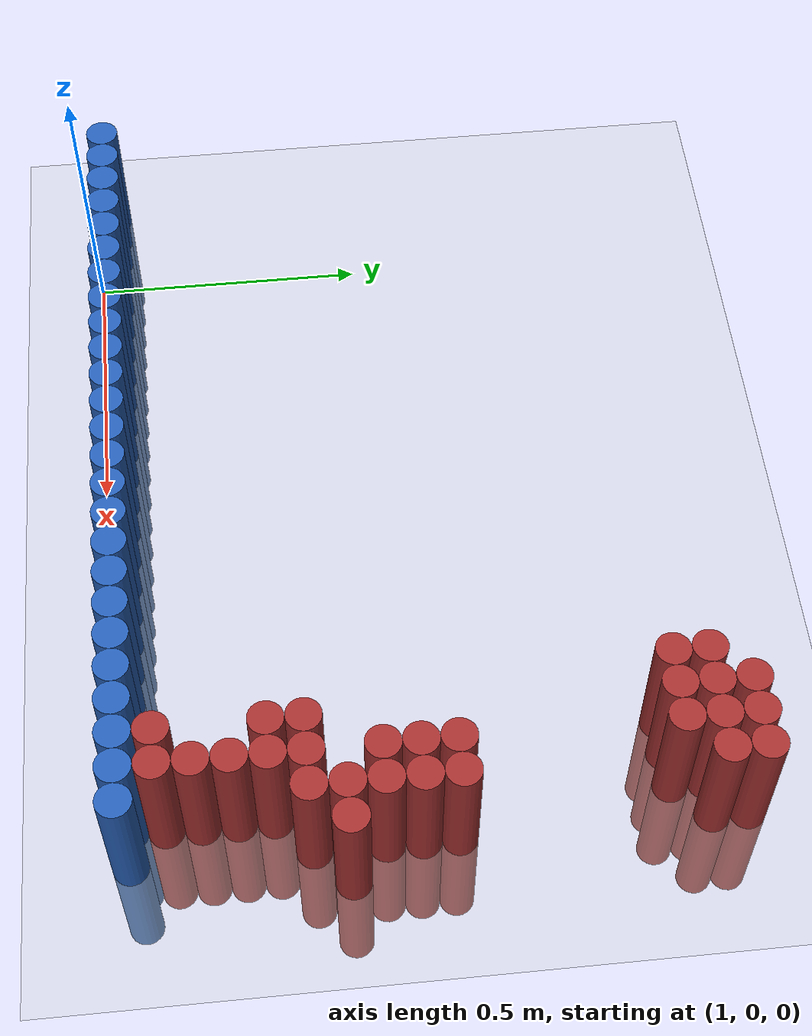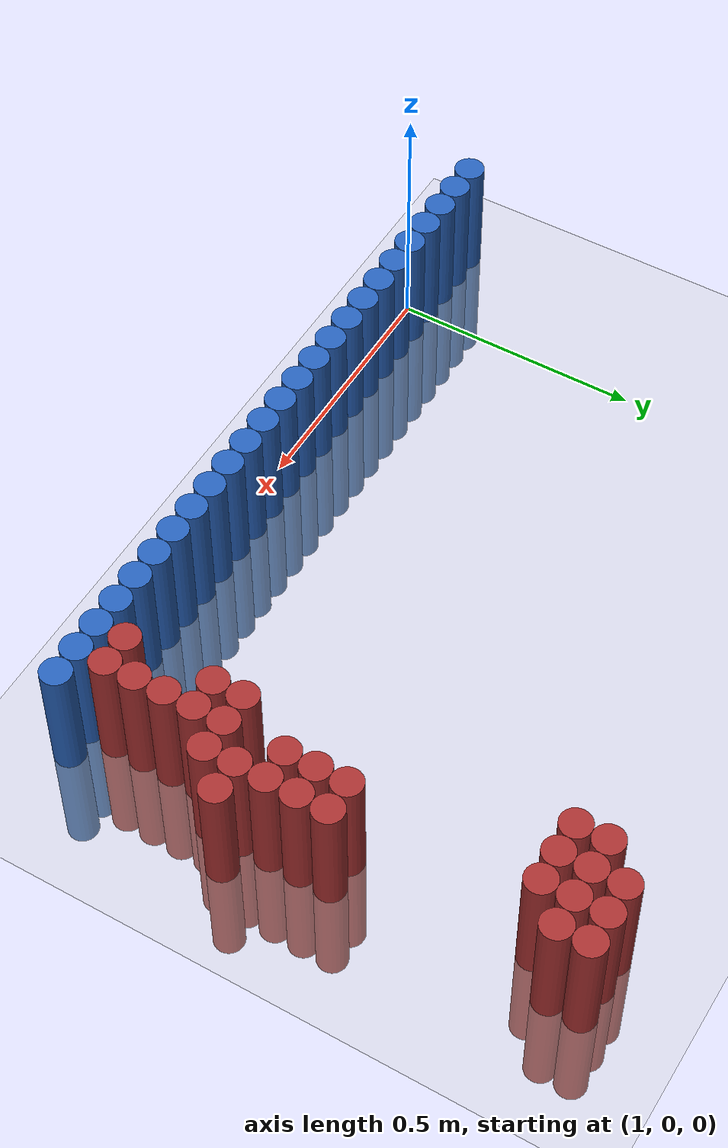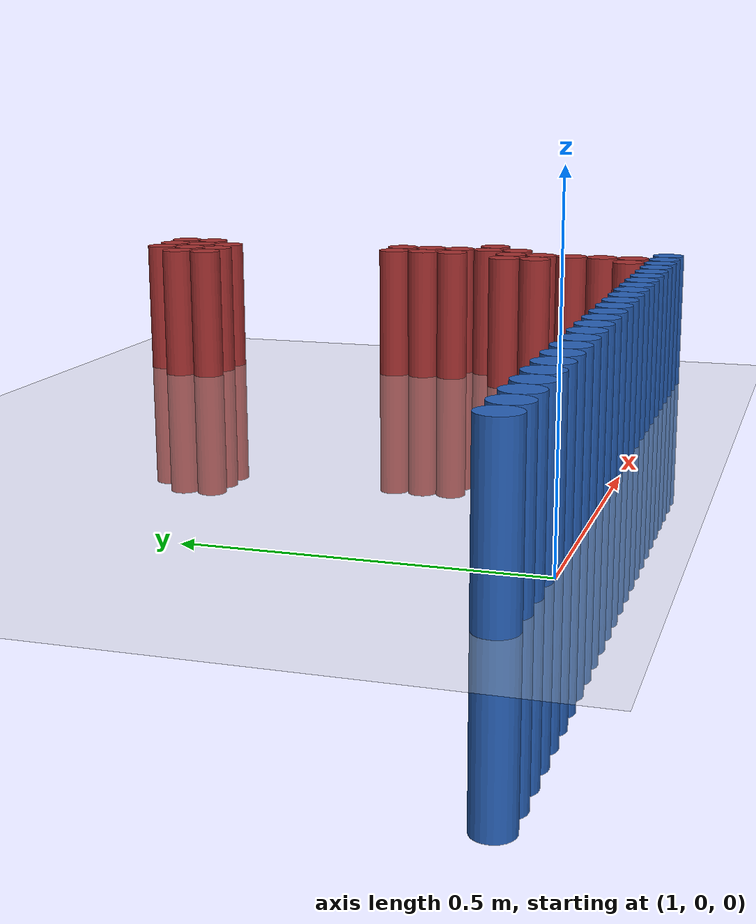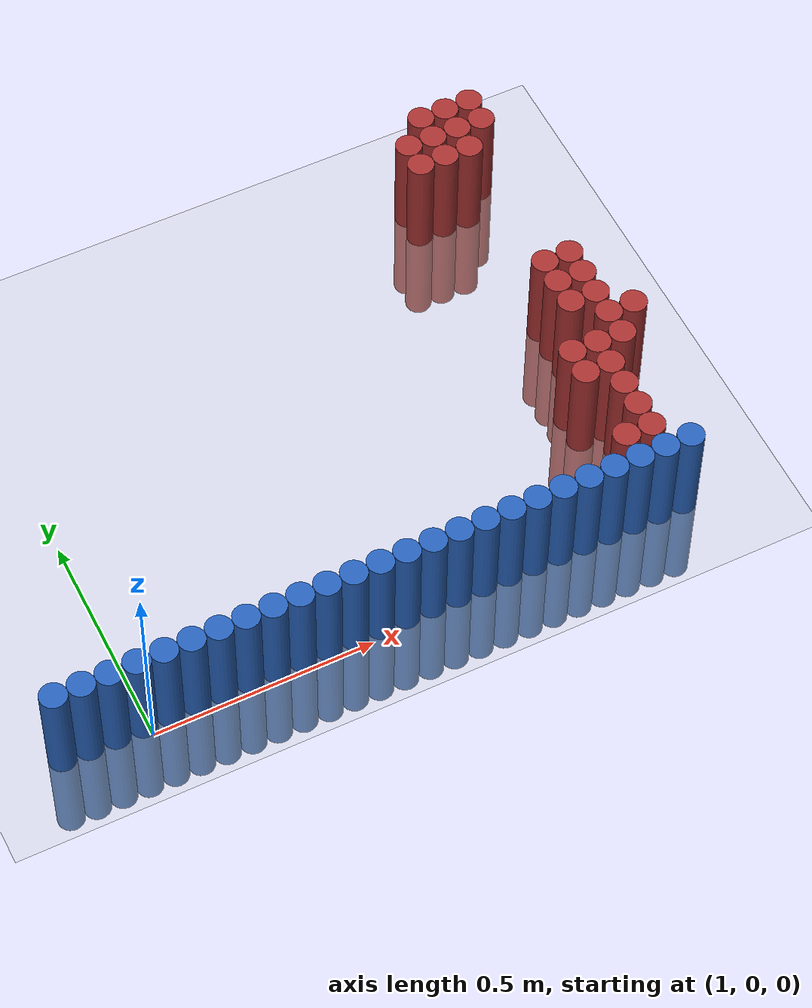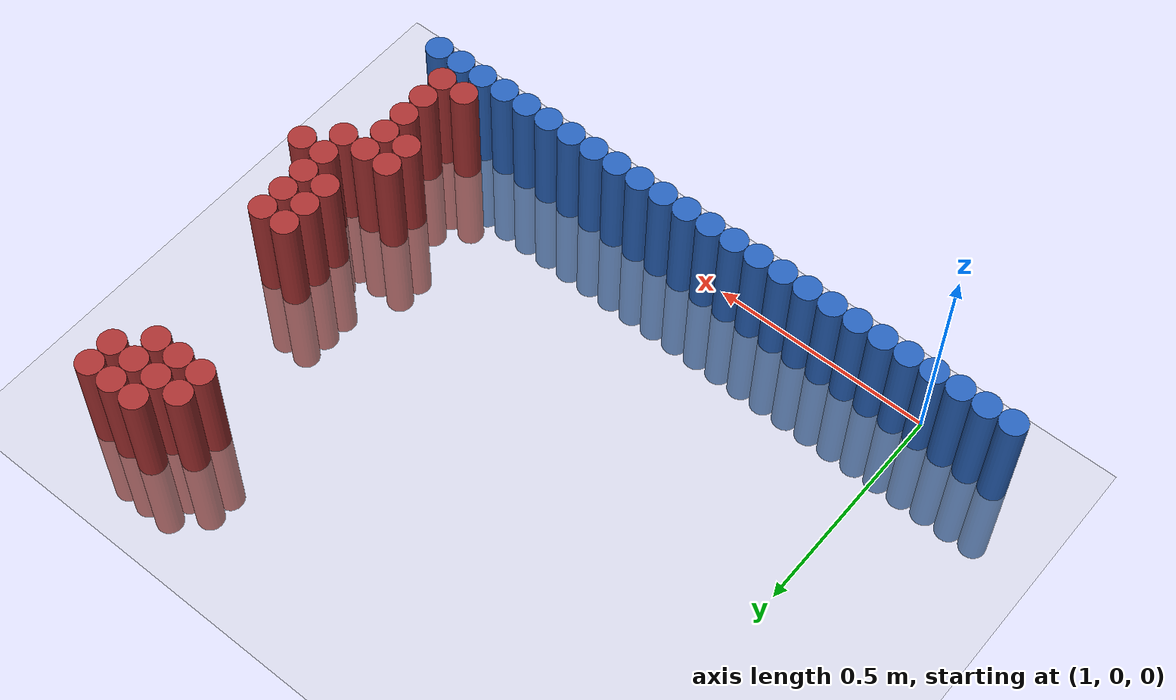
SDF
<sdf version="1.6">
 <world name="default">
  <model name="ground_plane">
   <static>1</static>
   <link name="link">
    <collision name="collision">
     <geometry><plane><normal>0 0 1</normal><size>100 100</size></plane></geometry>
     <surface><friction><ode><mu>100</mu><mu2>50</mu2></ode></friction></surface>
    </collision>
    <visual name="visual">
     <cast_shadows>0</cast_shadows>
     <geometry><plane><normal>0 0 1</normal><size>100 100</size></plane></geometry>
     <material>
      <script><uri>file://media/materials/scripts/gazebo.material</uri><name>Gazebo/Grey</name></script>
     </material>
    </visual>
   </link>
  </model>
  <model name="unit_cylinder_53">
   <static>1</static>
   <pose>0.810000 0.030000 0.000000 0.000000 0.000000 0.000000</pose>
   <link name="link">
    <inertial>
     <mass>1</mass>
     <inertia><ixx>0.145833</ixx><ixy>0</ixy><ixz>0</ixz><iyy>0.145833</iyy><iyz>0</iyz><izz>0.125</izz></inertia>
    </inertial>
    <collision name="collision">
     <geometry><cylinder><radius>0.030000</radius><length>0.5</length></cylinder></geometry>
    </collision>
    <visual name="visual">
     <geometry><cylinder><radius>0.030000</radius><length>0.5</length></cylinder></geometry>
     <material>
      <ambient>0.152000 0.379000 0.720000 1</ambient>
      <diffuse>0.152000 0.379000 0.720000 1</diffuse>
     </material>
     <material>
      <script><name>Gazebo/Grey</name><uri>file://media/materials/scripts/gazebo.material</uri></script>
     </material>
    </visual>
   </link>
  </model>
  <model name="unit_cylinder_55">
   <static>1</static>
   <pose>0.870000 0.030000 0.000000 0.000000 0.000000 0.000000</pose>
   <link name="link">
    <inertial>
     <mass>1</mass>
     <inertia><ixx>0.145833</ixx><ixy>0</ixy><ixz>0</ixz><iyy>0.145833</iyy><iyz>0</iyz><izz>0.125</izz></inertia>
    </inertial>
    <collision name="collision">
     <geometry><cylinder><radius>0.030000</radius><length>0.5</length></cylinder></geometry>
    </collision>
    <visual name="visual">
     <geometry><cylinder><radius>0.030000</radius><length>0.5</length></cylinder></geometry>
     <material>
      <ambient>0.152000 0.379000 0.720000 1</ambient>
      <diffuse>0.152000 0.379000 0.720000 1</diffuse>
     </material>
     <material>
      <script><name>Gazebo/Grey</name><uri>file://media/materials/scripts/gazebo.material</uri></script>
     </material>
    </visual>
   </link>
  </model>
  <model name="unit_cylinder_57">
   <static>1</static>
   <pose>0.930000 0.030000 0.000000 0.000000 0.000000 0.000000</pose>
   <link name="link">
    <inertial>
     <mass>1</mass>
     <inertia><ixx>0.145833</ixx><ixy>0</ixy><ixz>0</ixz><iyy>0.145833</iyy><iyz>0</iyz><izz>0.125</izz></inertia>
    </inertial>
    <collision name="collision">
     <geometry><cylinder><radius>0.030000</radius><length>0.5</length></cylinder></geometry>
    </collision>
    <visual name="visual">
     <geometry><cylinder><radius>0.030000</radius><length>0.5</length></cylinder></geometry>
     <material>
      <ambient>0.152000 0.379000 0.720000 1</ambient>
      <diffuse>0.152000 0.379000 0.720000 1</diffuse>
     </material>
     <material>
      <script><name>Gazebo/Grey</name><uri>file://media/materials/scripts/gazebo.material</uri></script>
     </material>
    </visual>
   </link>
  </model>
  <model name="unit_cylinder_59">
   <static>1</static>
   <pose>0.990000 0.030000 0.000000 0.000000 0.000000 0.000000</pose>
   <link name="link">
    <inertial>
     <mass>1</mass>
     <inertia><ixx>0.145833</ixx><ixy>0</ixy><ixz>0</ixz><iyy>0.145833</iyy><iyz>0</iyz><izz>0.125</izz></inertia>
    </inertial>
    <collision name="collision">
     <geometry><cylinder><radius>0.030000</radius><length>0.5</length></cylinder></geometry>
    </collision>
    <visual name="visual">
     <geometry><cylinder><radius>0.030000</radius><length>0.5</length></cylinder></geometry>
     <material>
      <ambient>0.152000 0.379000 0.720000 1</ambient>
      <diffuse>0.152000 0.379000 0.720000 1</diffuse>
     </material>
     <material>
      <script><name>Gazebo/Grey</name><uri>file://media/materials/scripts/gazebo.material</uri></script>
     </material>
    </visual>
   </link>
  </model>
  <model name="unit_cylinder_61">
   <static>1</static>
   <pose>1.050000 0.030000 0.000000 0.000000 0.000000 0.000000</pose>
   <link name="link">
    <inertial>
     <mass>1</mass>
     <inertia><ixx>0.145833</ixx><ixy>0</ixy><ixz>0</ixz><iyy>0.145833</iyy><iyz>0</iyz><izz>0.125</izz></inertia>
    </inertial>
    <collision name="collision">
     <geometry><cylinder><radius>0.030000</radius><length>0.5</length></cylinder></geometry>
    </collision>
    <visual name="visual">
     <geometry><cylinder><radius>0.030000</radius><length>0.5</length></cylinder></geometry>
     <material>
      <ambient>0.152000 0.379000 0.720000 1</ambient>
      <diffuse>0.152000 0.379000 0.720000 1</diffuse>
     </material>
     <material>
      <script><name>Gazebo/Grey</name><uri>file://media/materials/scripts/gazebo.material</uri></script>
     </material>
    </visual>
   </link>
  </model>
  <model name="unit_cylinder_63">
   <static>1</static>
   <pose>1.110000 0.030000 0.000000 0.000000 0.000000 0.000000</pose>
   <link name="link">
    <inertial>
     <mass>1</mass>
     <inertia><ixx>0.145833</ixx><ixy>0</ixy><ixz>0</ixz><iyy>0.145833</iyy><iyz>0</iyz><izz>0.125</izz></inertia>
    </inertial>
    <collision name="collision">
     <geometry><cylinder><radius>0.030000</radius><length>0.5</length></cylinder></geometry>
    </collision>
    <visual name="visual">
     <geometry><cylinder><radius>0.030000</radius><length>0.5</length></cylinder></geometry>
     <material>
      <ambient>0.152000 0.379000 0.720000 1</ambient>
      <diffuse>0.152000 0.379000 0.720000 1</diffuse>
     </material>
     <material>
      <script><name>Gazebo/Grey</name><uri>file://media/materials/scripts/gazebo.material</uri></script>
     </material>
    </visual>
   </link>
  </model>
  <model name="unit_cylinder_65">
   <static>1</static>
   <pose>1.170000 0.030000 0.000000 0.000000 0.000000 0.000000</pose>
   <link name="link">
    <inertial>
     <mass>1</mass>
     <inertia><ixx>0.145833</ixx><ixy>0</ixy><ixz>0</ixz><iyy>0.145833</iyy><iyz>0</iyz><izz>0.125</izz></inertia>
    </inertial>
    <collision name="collision">
     <geometry><cylinder><radius>0.030000</radius><length>0.5</length></cylinder></geometry>
    </collision>
    <visual name="visual">
     <geometry><cylinder><radius>0.030000</radius><length>0.5</length></cylinder></geometry>
     <material>
      <ambient>0.152000 0.379000 0.720000 1</ambient>
      <diffuse>0.152000 0.379000 0.720000 1</diffuse>
     </material>
     <material>
      <script><name>Gazebo/Grey</name><uri>file://media/materials/scripts/gazebo.material</uri></script>
     </material>
    </visual>
   </link>
  </model>
  <model name="unit_cylinder_67">
   <static>1</static>
   <pose>1.230000 0.030000 0.000000 0.000000 0.000000 0.000000</pose>
   <link name="link">
    <inertial>
     <mass>1</mass>
     <inertia><ixx>0.145833</ixx><ixy>0</ixy><ixz>0</ixz><iyy>0.145833</iyy><iyz>0</iyz><izz>0.125</izz></inertia>
    </inertial>
    <collision name="collision">
     <geometry><cylinder><radius>0.030000</radius><length>0.5</length></cylinder></geometry>
    </collision>
    <visual name="visual">
     <geometry><cylinder><radius>0.030000</radius><length>0.5</length></cylinder></geometry>
     <material>
      <ambient>0.152000 0.379000 0.720000 1</ambient>
      <diffuse>0.152000 0.379000 0.720000 1</diffuse>
     </material>
     <material>
      <script><name>Gazebo/Grey</name><uri>file://media/materials/scripts/gazebo.material</uri></script>
     </material>
    </visual>
   </link>
  </model>
  <model name="unit_cylinder_69">
   <static>1</static>
   <pose>1.290000 0.030000 0.000000 0.000000 0.000000 0.000000</pose>
   <link name="link">
    <inertial>
     <mass>1</mass>
     <inertia><ixx>0.145833</ixx><ixy>0</ixy><ixz>0</ixz><iyy>0.145833</iyy><iyz>0</iyz><izz>0.125</izz></inertia>
    </inertial>
    <collision name="collision">
     <geometry><cylinder><radius>0.030000</radius><length>0.5</length></cylinder></geometry>
    </collision>
    <visual name="visual">
     <geometry><cylinder><radius>0.030000</radius><length>0.5</length></cylinder></geometry>
     <material>
      <ambient>0.152000 0.379000 0.720000 1</ambient>
      <diffuse>0.152000 0.379000 0.720000 1</diffuse>
     </material>
     <material>
      <script><name>Gazebo/Grey</name><uri>file://media/materials/scripts/gazebo.material</uri></script>
     </material>
    </visual>
   </link>
  </model>
  <model name="unit_cylinder_71">
   <static>1</static>
   <pose>1.350000 0.030000 0.000000 0.000000 0.000000 0.000000</pose>
   <link name="link">
    <inertial>
     <mass>1</mass>
     <inertia><ixx>0.145833</ixx><ixy>0</ixy><ixz>0</ixz><iyy>0.145833</iyy><iyz>0</iyz><izz>0.125</izz></inertia>
    </inertial>
    <collision name="collision">
     <geometry><cylinder><radius>0.030000</radius><length>0.5</length></cylinder></geometry>
    </collision>
    <visual name="visual">
     <geometry><cylinder><radius>0.030000</radius><length>0.5</length></cylinder></geometry>
     <material>
      <ambient>0.152000 0.379000 0.720000 1</ambient>
      <diffuse>0.152000 0.379000 0.720000 1</diffuse>
     </material>
     <material>
      <script><name>Gazebo/Grey</name><uri>file://media/materials/scripts/gazebo.material</uri></script>
     </material>
    </visual>
   </link>
  </model>
  <model name="unit_cylinder_73">
   <static>1</static>
   <pose>1.410000 0.030000 0.000000 0.000000 0.000000 0.000000</pose>
   <link name="link">
    <inertial>
     <mass>1</mass>
     <inertia><ixx>0.145833</ixx><ixy>0</ixy><ixz>0</ixz><iyy>0.145833</iyy><iyz>0</iyz><izz>0.125</izz></inertia>
    </inertial>
    <collision name="collision">
     <geometry><cylinder><radius>0.030000</radius><length>0.5</length></cylinder></geometry>
    </collision>
    <visual name="visual">
     <geometry><cylinder><radius>0.030000</radius><length>0.5</length></cylinder></geometry>
     <material>
      <ambient>0.152000 0.379000 0.720000 1</ambient>
      <diffuse>0.152000 0.379000 0.720000 1</diffuse>
     </material>
     <material>
      <script><name>Gazebo/Grey</name><uri>file://media/materials/scripts/gazebo.material</uri></script>
     </material>
    </visual>
   </link>
  </model>
  <model name="unit_cylinder_75">
   <static>1</static>
   <pose>1.470000 0.030000 0.000000 0.000000 0.000000 0.000000</pose>
   <link name="link">
    <inertial>
     <mass>1</mass>
     <inertia><ixx>0.145833</ixx><ixy>0</ixy><ixz>0</ixz><iyy>0.145833</iyy><iyz>0</iyz><izz>0.125</izz></inertia>
    </inertial>
    <collision name="collision">
     <geometry><cylinder><radius>0.030000</radius><length>0.5</length></cylinder></geometry>
    </collision>
    <visual name="visual">
     <geometry><cylinder><radius>0.030000</radius><length>0.5</length></cylinder></geometry>
     <material>
      <ambient>0.152000 0.379000 0.720000 1</ambient>
      <diffuse>0.152000 0.379000 0.720000 1</diffuse>
     </material>
     <material>
      <script><name>Gazebo/Grey</name><uri>file://media/materials/scripts/gazebo.material</uri></script>
     </material>
    </visual>
   </link>
  </model>
  <model name="unit_cylinder_77">
   <static>1</static>
   <pose>1.530000 0.030000 0.000000 0.000000 0.000000 0.000000</pose>
   <link name="link">
    <inertial>
     <mass>1</mass>
     <inertia><ixx>0.145833</ixx><ixy>0</ixy><ixz>0</ixz><iyy>0.145833</iyy><iyz>0</iyz><izz>0.125</izz></inertia>
    </inertial>
    <collision name="collision">
     <geometry><cylinder><radius>0.030000</radius><length>0.5</length></cylinder></geometry>
    </collision>
    <visual name="visual">
     <geometry><cylinder><radius>0.030000</radius><length>0.5</length></cylinder></geometry>
     <material>
      <ambient>0.152000 0.379000 0.720000 1</ambient>
      <diffuse>0.152000 0.379000 0.720000 1</diffuse>
     </material>
     <material>
      <script><name>Gazebo/Grey</name><uri>file://media/materials/scripts/gazebo.material</uri></script>
     </material>
    </visual>
   </link>
  </model>
  <model name="unit_cylinder_79">
   <static>1</static>
   <pose>1.590000 0.030000 0.000000 0.000000 0.000000 0.000000</pose>
   <link name="link">
    <inertial>
     <mass>1</mass>
     <inertia><ixx>0.145833</ixx><ixy>0</ixy><ixz>0</ixz><iyy>0.145833</iyy><iyz>0</iyz><izz>0.125</izz></inertia>
    </inertial>
    <collision name="collision">
     <geometry><cylinder><radius>0.030000</radius><length>0.5</length></cylinder></geometry>
    </collision>
    <visual name="visual">
     <geometry><cylinder><radius>0.030000</radius><length>0.5</length></cylinder></geometry>
     <material>
      <ambient>0.152000 0.379000 0.720000 1</ambient>
      <diffuse>0.152000 0.379000 0.720000 1</diffuse>
     </material>
     <material>
      <script><name>Gazebo/Grey</name><uri>file://media/materials/scripts/gazebo.material</uri></script>
     </material>
    </visual>
   </link>
  </model>
  <model name="unit_cylinder_81">
   <static>1</static>
   <pose>1.650000 0.030000 0.000000 0.000000 0.000000 0.000000</pose>
   <link name="link">
    <inertial>
     <mass>1</mass>
     <inertia><ixx>0.145833</ixx><ixy>0</ixy><ixz>0</ixz><iyy>0.145833</iyy><iyz>0</iyz><izz>0.125</izz></inertia>
    </inertial>
    <collision name="collision">
     <geometry><cylinder><radius>0.030000</radius><length>0.5</length></cylinder></geometry>
    </collision>
    <visual name="visual">
     <geometry><cylinder><radius>0.030000</radius><length>0.5</length></cylinder></geometry>
     <material>
      <ambient>0.152000 0.379000 0.720000 1</ambient>
      <diffuse>0.152000 0.379000 0.720000 1</diffuse>
     </material>
     <material>
      <script><name>Gazebo/Grey</name><uri>file://media/materials/scripts/gazebo.material</uri></script>
     </material>
    </visual>
   </link>
  </model>
  <model name="unit_cylinder_83">
   <static>1</static>
   <pose>1.710000 0.030000 0.000000 0.000000 0.000000 0.000000</pose>
   <link name="link">
    <inertial>
     <mass>1</mass>
     <inertia><ixx>0.145833</ixx><ixy>0</ixy><ixz>0</ixz><iyy>0.145833</iyy><iyz>0</iyz><izz>0.125</izz></inertia>
    </inertial>
    <collision name="collision">
     <geometry><cylinder><radius>0.030000</radius><length>0.5</length></cylinder></geometry>
    </collision>
    <visual name="visual">
     <geometry><cylinder><radius>0.030000</radius><length>0.5</length></cylinder></geometry>
     <material>
      <ambient>0.152000 0.379000 0.720000 1</ambient>
      <diffuse>0.152000 0.379000 0.720000 1</diffuse>
     </material>
     <material>
      <script><name>Gazebo/Grey</name><uri>file://media/materials/scripts/gazebo.material</uri></script>
     </material>
    </visual>
   </link>
  </model>
  <model name="unit_cylinder_85">
   <static>1</static>
   <pose>1.770000 0.030000 0.000000 0.000000 0.000000 0.000000</pose>
   <link name="link">
    <inertial>
     <mass>1</mass>
     <inertia><ixx>0.145833</ixx><ixy>0</ixy><ixz>0</ixz><iyy>0.145833</iyy><iyz>0</iyz><izz>0.125</izz></inertia>
    </inertial>
    <collision name="collision">
     <geometry><cylinder><radius>0.030000</radius><length>0.5</length></cylinder></geometry>
    </collision>
    <visual name="visual">
     <geometry><cylinder><radius>0.030000</radius><length>0.5</length></cylinder></geometry>
     <material>
      <ambient>0.152000 0.379000 0.720000 1</ambient>
      <diffuse>0.152000 0.379000 0.720000 1</diffuse>
     </material>
     <material>
      <script><name>Gazebo/Grey</name><uri>file://media/materials/scripts/gazebo.material</uri></script>
     </material>
    </visual>
   </link>
  </model>
  <model name="unit_cylinder_87">
   <static>1</static>
   <pose>1.830000 0.030000 0.000000 0.000000 0.000000 0.000000</pose>
   <link name="link">
    <inertial>
     <mass>1</mass>
     <inertia><ixx>0.145833</ixx><ixy>0</ixy><ixz>0</ixz><iyy>0.145833</iyy><iyz>0</iyz><izz>0.125</izz></inertia>
    </inertial>
    <collision name="collision">
     <geometry><cylinder><radius>0.030000</radius><length>0.5</length></cylinder></geometry>
    </collision>
    <visual name="visual">
     <geometry><cylinder><radius>0.030000</radius><length>0.5</length></cylinder></geometry>
     <material>
      <ambient>0.152000 0.379000 0.720000 1</ambient>
      <diffuse>0.152000 0.379000 0.720000 1</diffuse>
     </material>
     <material>
      <script><name>Gazebo/Grey</name><uri>file://media/materials/scripts/gazebo.material</uri></script>
     </material>
    </visual>
   </link>
  </model>
  <model name="unit_cylinder_89">
   <static>1</static>
   <pose>1.890000 0.030000 0.000000 0.000000 0.000000 0.000000</pose>
   <link name="link">
    <inertial>
     <mass>1</mass>
     <inertia><ixx>0.145833</ixx><ixy>0</ixy><ixz>0</ixz><iyy>0.145833</iyy><iyz>0</iyz><izz>0.125</izz></inertia>
    </inertial>
    <collision name="collision">
     <geometry><cylinder><radius>0.030000</radius><length>0.5</length></cylinder></geometry>
    </collision>
    <visual name="visual">
     <geometry><cylinder><radius>0.030000</radius><length>0.5</length></cylinder></geometry>
     <material>
      <ambient>0.152000 0.379000 0.720000 1</ambient>
      <diffuse>0.152000 0.379000 0.720000 1</diffuse>
     </material>
     <material>
      <script><name>Gazebo/Grey</name><uri>file://media/materials/scripts/gazebo.material</uri></script>
     </material>
    </visual>
   </link>
  </model>
  <model name="unit_cylinder_91">
   <static>1</static>
   <pose>1.950000 0.030000 0.000000 0.000000 0.000000 0.000000</pose>
   <link name="link">
    <inertial>
     <mass>1</mass>
     <inertia><ixx>0.145833</ixx><ixy>0</ixy><ixz>0</ixz><iyy>0.145833</iyy><iyz>0</iyz><izz>0.125</izz></inertia>
    </inertial>
    <collision name="collision">
     <geometry><cylinder><radius>0.030000</radius><length>0.5</length></cylinder></geometry>
    </collision>
    <visual name="visual">
     <geometry><cylinder><radius>0.030000</radius><length>0.5</length></cylinder></geometry>
     <material>
      <ambient>0.152000 0.379000 0.720000 1</ambient>
      <diffuse>0.152000 0.379000 0.720000 1</diffuse>
     </material>
     <material>
      <script><name>Gazebo/Grey</name><uri>file://media/materials/scripts/gazebo.material</uri></script>
     </material>
    </visual>
   </link>
  </model>
  <model name="unit_cylinder_93">
   <static>1</static>
   <pose>2.010000 0.030000 0.000000 0.000000 0.000000 0.000000</pose>
   <link name="link">
    <inertial>
     <mass>1</mass>
     <inertia><ixx>0.145833</ixx><ixy>0</ixy><ixz>0</ixz><iyy>0.145833</iyy><iyz>0</iyz><izz>0.125</izz></inertia>
    </inertial>
    <collision name="collision">
     <geometry><cylinder><radius>0.030000</radius><length>0.5</length></cylinder></geometry>
    </collision>
    <visual name="visual">
     <geometry><cylinder><radius>0.030000</radius><length>0.5</length></cylinder></geometry>
     <material>
      <ambient>0.152000 0.379000 0.720000 1</ambient>
      <diffuse>0.152000 0.379000 0.720000 1</diffuse>
     </material>
     <material>
      <script><name>Gazebo/Grey</name><uri>file://media/materials/scripts/gazebo.material</uri></script>
     </material>
    </visual>
   </link>
  </model>
  <model name="unit_cylinder_225">
   <static>1</static>
   <pose>2.130000 1.050000 0.000000 0.000000 0.000000 0.000000</pose>
   <link name="link">
    <inertial>
     <mass>1</mass>
     <inertia><ixx>0.145833</ixx><ixy>0</ixy><ixz>0</ixz><iyy>0.145833</iyy><iyz>0</iyz><izz>0.125</izz></inertia>
    </inertial>
    <collision name="collision">
     <geometry><cylinder><radius>0.030000</radius><length>0.5</length></cylinder></geometry>
    </collision>
    <visual name="visual">
     <geometry><cylinder><radius>0.030000</radius><length>0.5</length></cylinder></geometry>
     <material>
      <ambient>0.648000 0.192000 0.192000 1</ambient>
      <diffuse>0.648000 0.192000 0.192000 1</diffuse>
     </material>
     <material>
      <script><name>Gazebo/Grey</name><uri>file://media/materials/scripts/gazebo.material</uri></script>
     </material>
    </visual>
   </link>
  </model>
  <model name="unit_cylinder_226">
   <static>1</static>
   <pose>2.190000 1.050000 0.000000 0.000000 0.000000 0.000000</pose>
   <link name="link">
    <inertial>
     <mass>1</mass>
     <inertia><ixx>0.145833</ixx><ixy>0</ixy><ixz>0</ixz><iyy>0.145833</iyy><iyz>0</iyz><izz>0.125</izz></inertia>
    </inertial>
    <collision name="collision">
     <geometry><cylinder><radius>0.030000</radius><length>0.5</length></cylinder></geometry>
    </collision>
    <visual name="visual">
     <geometry><cylinder><radius>0.030000</radius><length>0.5</length></cylinder></geometry>
     <material>
      <ambient>0.648000 0.192000 0.192000 1</ambient>
      <diffuse>0.648000 0.192000 0.192000 1</diffuse>
     </material>
     <material>
      <script><name>Gazebo/Grey</name><uri>file://media/materials/scripts/gazebo.material</uri></script>
     </material>
    </visual>
   </link>
  </model>
  <model name="unit_cylinder_227">
   <static>1</static>
   <pose>2.250000 1.050000 0.000000 0.000000 0.000000 0.000000</pose>
   <link name="link">
    <inertial>
     <mass>1</mass>
     <inertia><ixx>0.145833</ixx><ixy>0</ixy><ixz>0</ixz><iyy>0.145833</iyy><iyz>0</iyz><izz>0.125</izz></inertia>
    </inertial>
    <collision name="collision">
     <geometry><cylinder><radius>0.030000</radius><length>0.5</length></cylinder></geometry>
    </collision>
    <visual name="visual">
     <geometry><cylinder><radius>0.030000</radius><length>0.5</length></cylinder></geometry>
     <material>
      <ambient>0.648000 0.192000 0.192000 1</ambient>
      <diffuse>0.648000 0.192000 0.192000 1</diffuse>
     </material>
     <material>
      <script><name>Gazebo/Grey</name><uri>file://media/materials/scripts/gazebo.material</uri></script>
     </material>
    </visual>
   </link>
  </model>
  <model name="unit_cylinder_230">
   <static>1</static>
   <pose>2.070000 0.990000 0.000000 0.000000 0.000000 0.000000</pose>
   <link name="link">
    <inertial>
     <mass>1</mass>
     <inertia><ixx>0.145833</ixx><ixy>0</ixy><ixz>0</ixz><iyy>0.145833</iyy><iyz>0</iyz><izz>0.125</izz></inertia>
    </inertial>
    <collision name="collision">
     <geometry><cylinder><radius>0.030000</radius><length>0.5</length></cylinder></geometry>
    </collision>
    <visual name="visual">
     <geometry><cylinder><radius>0.030000</radius><length>0.5</length></cylinder></geometry>
     <material>
      <ambient>0.648000 0.192000 0.192000 1</ambient>
      <diffuse>0.648000 0.192000 0.192000 1</diffuse>
     </material>
     <material>
      <script><name>Gazebo/Grey</name><uri>file://media/materials/scripts/gazebo.material</uri></script>
     </material>
    </visual>
   </link>
  </model>
  <model name="unit_cylinder_231">
   <static>1</static>
   <pose>2.130000 0.990000 0.000000 0.000000 0.000000 0.000000</pose>
   <link name="link">
    <inertial>
     <mass>1</mass>
     <inertia><ixx>0.145833</ixx><ixy>0</ixy><ixz>0</ixz><iyy>0.145833</iyy><iyz>0</iyz><izz>0.125</izz></inertia>
    </inertial>
    <collision name="collision">
     <geometry><cylinder><radius>0.030000</radius><length>0.5</length></cylinder></geometry>
    </collision>
    <visual name="visual">
     <geometry><cylinder><radius>0.030000</radius><length>0.5</length></cylinder></geometry>
     <material>
      <ambient>0.648000 0.192000 0.192000 1</ambient>
      <diffuse>0.648000 0.192000 0.192000 1</diffuse>
     </material>
     <material>
      <script><name>Gazebo/Grey</name><uri>file://media/materials/scripts/gazebo.material</uri></script>
     </material>
    </visual>
   </link>
  </model>
  <model name="unit_cylinder_232">
   <static>1</static>
   <pose>2.190000 0.990000 0.000000 0.000000 0.000000 0.000000</pose>
   <link name="link">
    <inertial>
     <mass>1</mass>
     <inertia><ixx>0.145833</ixx><ixy>0</ixy><ixz>0</ixz><iyy>0.145833</iyy><iyz>0</iyz><izz>0.125</izz></inertia>
    </inertial>
    <collision name="collision">
     <geometry><cylinder><radius>0.030000</radius><length>0.5</length></cylinder></geometry>
    </collision>
    <visual name="visual">
     <geometry><cylinder><radius>0.030000</radius><length>0.5</length></cylinder></geometry>
     <material>
      <ambient>0.648000 0.192000 0.192000 1</ambient>
      <diffuse>0.648000 0.192000 0.192000 1</diffuse>
     </material>
     <material>
      <script><name>Gazebo/Grey</name><uri>file://media/materials/scripts/gazebo.material</uri></script>
     </material>
    </visual>
   </link>
  </model>
  <model name="unit_cylinder_233">
   <static>1</static>
   <pose>2.250000 0.990000 0.000000 0.000000 0.000000 0.000000</pose>
   <link name="link">
    <inertial>
     <mass>1</mass>
     <inertia><ixx>0.145833</ixx><ixy>0</ixy><ixz>0</ixz><iyy>0.145833</iyy><iyz>0</iyz><izz>0.125</izz></inertia>
    </inertial>
    <collision name="collision">
     <geometry><cylinder><radius>0.030000</radius><length>0.5</length></cylinder></geometry>
    </collision>
    <visual name="visual">
     <geometry><cylinder><radius>0.030000</radius><length>0.5</length></cylinder></geometry>
     <material>
      <ambient>0.648000 0.192000 0.192000 1</ambient>
      <diffuse>0.648000 0.192000 0.192000 1</diffuse>
     </material>
     <material>
      <script><name>Gazebo/Grey</name><uri>file://media/materials/scripts/gazebo.material</uri></script>
     </material>
    </visual>
   </link>
  </model>
  <model name="unit_cylinder_240">
   <static>1</static>
   <pose>2.070000 0.930000 0.000000 0.000000 0.000000 0.000000</pose>
   <link name="link">
    <inertial>
     <mass>1</mass>
     <inertia><ixx>0.145833</ixx><ixy>0</ixy><ixz>0</ixz><iyy>0.145833</iyy><iyz>0</iyz><izz>0.125</izz></inertia>
    </inertial>
    <collision name="collision">
     <geometry><cylinder><radius>0.030000</radius><length>0.5</length></cylinder></geometry>
    </collision>
    <visual name="visual">
     <geometry><cylinder><radius>0.030000</radius><length>0.5</length></cylinder></geometry>
     <material>
      <ambient>0.648000 0.192000 0.192000 1</ambient>
      <diffuse>0.648000 0.192000 0.192000 1</diffuse>
     </material>
     <material>
      <script><name>Gazebo/Grey</name><uri>file://media/materials/scripts/gazebo.material</uri></script>
     </material>
    </visual>
   </link>
  </model>
  <model name="unit_cylinder_241">
   <static>1</static>
   <pose>2.130000 0.930000 0.000000 0.000000 0.000000 0.000000</pose>
   <link name="link">
    <inertial>
     <mass>1</mass>
     <inertia><ixx>0.145833</ixx><ixy>0</ixy><ixz>0</ixz><iyy>0.145833</iyy><iyz>0</iyz><izz>0.125</izz></inertia>
    </inertial>
    <collision name="collision">
     <geometry><cylinder><radius>0.030000</radius><length>0.5</length></cylinder></geometry>
    </collision>
    <visual name="visual">
     <geometry><cylinder><radius>0.030000</radius><length>0.5</length></cylinder></geometry>
     <material>
      <ambient>0.648000 0.192000 0.192000 1</ambient>
      <diffuse>0.648000 0.192000 0.192000 1</diffuse>
     </material>
     <material>
      <script><name>Gazebo/Grey</name><uri>file://media/materials/scripts/gazebo.material</uri></script>
     </material>
    </visual>
   </link>
  </model>
  <model name="unit_cylinder_242">
   <static>1</static>
   <pose>2.190000 0.930000 0.000000 0.000000 0.000000 0.000000</pose>
   <link name="link">
    <inertial>
     <mass>1</mass>
     <inertia><ixx>0.145833</ixx><ixy>0</ixy><ixz>0</ixz><iyy>0.145833</iyy><iyz>0</iyz><izz>0.125</izz></inertia>
    </inertial>
    <collision name="collision">
     <geometry><cylinder><radius>0.030000</radius><length>0.5</length></cylinder></geometry>
    </collision>
    <visual name="visual">
     <geometry><cylinder><radius>0.030000</radius><length>0.5</length></cylinder></geometry>
     <material>
      <ambient>0.648000 0.192000 0.192000 1</ambient>
      <diffuse>0.648000 0.192000 0.192000 1</diffuse>
     </material>
     <material>
      <script><name>Gazebo/Grey</name><uri>file://media/materials/scripts/gazebo.material</uri></script>
     </material>
    </visual>
   </link>
  </model>
  <model name="unit_cylinder_274">
   <static>1</static>
   <pose>2.190000 0.570000 0.000000 0.000000 0.000000 0.000000</pose>
   <link name="link">
    <inertial>
     <mass>1</mass>
     <inertia><ixx>0.145833</ixx><ixy>0</ixy><ixz>0</ixz><iyy>0.145833</iyy><iyz>0</iyz><izz>0.125</izz></inertia>
    </inertial>
    <collision name="collision">
     <geometry><cylinder><radius>0.030000</radius><length>0.5</length></cylinder></geometry>
    </collision>
    <visual name="visual">
     <geometry><cylinder><radius>0.030000</radius><length>0.5</length></cylinder></geometry>
     <material>
      <ambient>0.648000 0.192000 0.192000 1</ambient>
      <diffuse>0.648000 0.192000 0.192000 1</diffuse>
     </material>
     <material>
      <script><name>Gazebo/Grey</name><uri>file://media/materials/scripts/gazebo.material</uri></script>
     </material>
    </visual>
   </link>
  </model>
  <model name="unit_cylinder_275">
   <static>1</static>
   <pose>2.250000 0.570000 0.000000 0.000000 0.000000 0.000000</pose>
   <link name="link">
    <inertial>
     <mass>1</mass>
     <inertia><ixx>0.145833</ixx><ixy>0</ixy><ixz>0</ixz><iyy>0.145833</iyy><iyz>0</iyz><izz>0.125</izz></inertia>
    </inertial>
    <collision name="collision">
     <geometry><cylinder><radius>0.030000</radius><length>0.5</length></cylinder></geometry>
    </collision>
    <visual name="visual">
     <geometry><cylinder><radius>0.030000</radius><length>0.5</length></cylinder></geometry>
     <material>
      <ambient>0.648000 0.192000 0.192000 1</ambient>
      <diffuse>0.648000 0.192000 0.192000 1</diffuse>
     </material>
     <material>
      <script><name>Gazebo/Grey</name><uri>file://media/materials/scripts/gazebo.material</uri></script>
     </material>
    </visual>
   </link>
  </model>
  <model name="unit_cylinder_277">
   <static>1</static>
   <pose>2.190000 0.510000 0.000000 0.000000 0.000000 0.000000</pose>
   <link name="link">
    <inertial>
     <mass>1</mass>
     <inertia><ixx>0.145833</ixx><ixy>0</ixy><ixz>0</ixz><iyy>0.145833</iyy><iyz>0</iyz><izz>0.125</izz></inertia>
    </inertial>
    <collision name="collision">
     <geometry><cylinder><radius>0.030000</radius><length>0.5</length></cylinder></geometry>
    </collision>
    <visual name="visual">
     <geometry><cylinder><radius>0.030000</radius><length>0.5</length></cylinder></geometry>
     <material>
      <ambient>0.648000 0.192000 0.192000 1</ambient>
      <diffuse>0.648000 0.192000 0.192000 1</diffuse>
     </material>
     <material>
      <script><name>Gazebo/Grey</name><uri>file://media/materials/scripts/gazebo.material</uri></script>
     </material>
    </visual>
   </link>
  </model>
  <model name="unit_cylinder_278">
   <static>1</static>
   <pose>2.250000 0.510000 0.000000 0.000000 0.000000 0.000000</pose>
   <link name="link">
    <inertial>
     <mass>1</mass>
     <inertia><ixx>0.145833</ixx><ixy>0</ixy><ixz>0</ixz><iyy>0.145833</iyy><iyz>0</iyz><izz>0.125</izz></inertia>
    </inertial>
    <collision name="collision">
     <geometry><cylinder><radius>0.030000</radius><length>0.5</length></cylinder></geometry>
    </collision>
    <visual name="visual">
     <geometry><cylinder><radius>0.030000</radius><length>0.5</length></cylinder></geometry>
     <material>
      <ambient>0.648000 0.192000 0.192000 1</ambient>
      <diffuse>0.648000 0.192000 0.192000 1</diffuse>
     </material>
     <material>
      <script><name>Gazebo/Grey</name><uri>file://media/materials/scripts/gazebo.material</uri></script>
     </material>
    </visual>
   </link>
  </model>
  <model name="unit_cylinder_280">
   <static>1</static>
   <pose>2.190000 0.450000 0.000000 0.000000 0.000000 0.000000</pose>
   <link name="link">
    <inertial>
     <mass>1</mass>
     <inertia><ixx>0.145833</ixx><ixy>0</ixy><ixz>0</ixz><iyy>0.145833</iyy><iyz>0</iyz><izz>0.125</izz></inertia>
    </inertial>
    <collision name="collision">
     <geometry><cylinder><radius>0.030000</radius><length>0.5</length></cylinder></geometry>
    </collision>
    <visual name="visual">
     <geometry><cylinder><radius>0.030000</radius><length>0.5</length></cylinder></geometry>
     <material>
      <ambient>0.648000 0.192000 0.192000 1</ambient>
      <diffuse>0.648000 0.192000 0.192000 1</diffuse>
     </material>
     <material>
      <script><name>Gazebo/Grey</name><uri>file://media/materials/scripts/gazebo.material</uri></script>
     </material>
    </visual>
   </link>
  </model>
  <model name="unit_cylinder_281">
   <static>1</static>
   <pose>2.250000 0.450000 0.000000 0.000000 0.000000 0.000000</pose>
   <link name="link">
    <inertial>
     <mass>1</mass>
     <inertia><ixx>0.145833</ixx><ixy>0</ixy><ixz>0</ixz><iyy>0.145833</iyy><iyz>0</iyz><izz>0.125</izz></inertia>
    </inertial>
    <collision name="collision">
     <geometry><cylinder><radius>0.030000</radius><length>0.5</length></cylinder></geometry>
    </collision>
    <visual name="visual">
     <geometry><cylinder><radius>0.030000</radius><length>0.5</length></cylinder></geometry>
     <material>
      <ambient>0.648000 0.192000 0.192000 1</ambient>
      <diffuse>0.648000 0.192000 0.192000 1</diffuse>
     </material>
     <material>
      <script><name>Gazebo/Grey</name><uri>file://media/materials/scripts/gazebo.material</uri></script>
     </material>
    </visual>
   </link>
  </model>
  <model name="unit_cylinder_282">
   <static>1</static>
   <pose>2.250000 0.390000 0.000000 0.000000 0.000000 0.000000</pose>
   <link name="link">
    <inertial>
     <mass>1</mass>
     <inertia><ixx>0.145833</ixx><ixy>0</ixy><ixz>0</ixz><iyy>0.145833</iyy><iyz>0</iyz><izz>0.125</izz></inertia>
    </inertial>
    <collision name="collision">
     <geometry><cylinder><radius>0.030000</radius><length>0.5</length></cylinder></geometry>
    </collision>
    <visual name="visual">
     <geometry><cylinder><radius>0.030000</radius><length>0.5</length></cylinder></geometry>
     <material>
      <ambient>0.648000 0.192000 0.192000 1</ambient>
      <diffuse>0.648000 0.192000 0.192000 1</diffuse>
     </material>
     <material>
      <script><name>Gazebo/Grey</name><uri>file://media/materials/scripts/gazebo.material</uri></script>
     </material>
    </visual>
   </link>
  </model>
  <model name="unit_cylinder_283">
   <static>1</static>
   <pose>2.310000 0.390000 0.000000 0.000000 0.000000 0.000000</pose>
   <link name="link">
    <inertial>
     <mass>1</mass>
     <inertia><ixx>0.145833</ixx><ixy>0</ixy><ixz>0</ixz><iyy>0.145833</iyy><iyz>0</iyz><izz>0.125</izz></inertia>
    </inertial>
    <collision name="collision">
     <geometry><cylinder><radius>0.030000</radius><length>0.5</length></cylinder></geometry>
    </collision>
    <visual name="visual">
     <geometry><cylinder><radius>0.030000</radius><length>0.5</length></cylinder></geometry>
     <material>
      <ambient>0.648000 0.192000 0.192000 1</ambient>
      <diffuse>0.648000 0.192000 0.192000 1</diffuse>
     </material>
     <material>
      <script><name>Gazebo/Grey</name><uri>file://media/materials/scripts/gazebo.material</uri></script>
     </material>
    </visual>
   </link>
  </model>
  <model name="unit_cylinder_287">
   <static>1</static>
   <pose>2.130000 0.330000 0.000000 0.000000 0.000000 0.000000</pose>
   <link name="link">
    <inertial>
     <mass>1</mass>
     <inertia><ixx>0.145833</ixx><ixy>0</ixy><ixz>0</ixz><iyy>0.145833</iyy><iyz>0</iyz><izz>0.125</izz></inertia>
    </inertial>
    <collision name="collision">
     <geometry><cylinder><radius>0.030000</radius><length>0.5</length></cylinder></geometry>
    </collision>
    <visual name="visual">
     <geometry><cylinder><radius>0.030000</radius><length>0.5</length></cylinder></geometry>
     <material>
      <ambient>0.648000 0.192000 0.192000 1</ambient>
      <diffuse>0.648000 0.192000 0.192000 1</diffuse>
     </material>
     <material>
      <script><name>Gazebo/Grey</name><uri>file://media/materials/scripts/gazebo.material</uri></script>
     </material>
    </visual>
   </link>
  </model>
  <model name="unit_cylinder_288">
   <static>1</static>
   <pose>2.190000 0.330000 0.000000 0.000000 0.000000 0.000000</pose>
   <link name="link">
    <inertial>
     <mass>1</mass>
     <inertia><ixx>0.145833</ixx><ixy>0</ixy><ixz>0</ixz><iyy>0.145833</iyy><iyz>0</iyz><izz>0.125</izz></inertia>
    </inertial>
    <collision name="collision">
     <geometry><cylinder><radius>0.030000</radius><length>0.5</length></cylinder></geometry>
    </collision>
    <visual name="visual">
     <geometry><cylinder><radius>0.030000</radius><length>0.5</length></cylinder></geometry>
     <material>
      <ambient>0.648000 0.192000 0.192000 1</ambient>
      <diffuse>0.648000 0.192000 0.192000 1</diffuse>
     </material>
     <material>
      <script><name>Gazebo/Grey</name><uri>file://media/materials/scripts/gazebo.material</uri></script>
     </material>
    </visual>
   </link>
  </model>
  <model name="unit_cylinder_289">
   <static>1</static>
   <pose>2.250000 0.330000 0.000000 0.000000 0.000000 0.000000</pose>
   <link name="link">
    <inertial>
     <mass>1</mass>
     <inertia><ixx>0.145833</ixx><ixy>0</ixy><ixz>0</ixz><iyy>0.145833</iyy><iyz>0</iyz><izz>0.125</izz></inertia>
    </inertial>
    <collision name="collision">
     <geometry><cylinder><radius>0.030000</radius><length>0.5</length></cylinder></geometry>
    </collision>
    <visual name="visual">
     <geometry><cylinder><radius>0.030000</radius><length>0.5</length></cylinder></geometry>
     <material>
      <ambient>0.648000 0.192000 0.192000 1</ambient>
      <diffuse>0.648000 0.192000 0.192000 1</diffuse>
     </material>
     <material>
      <script><name>Gazebo/Grey</name><uri>file://media/materials/scripts/gazebo.material</uri></script>
     </material>
    </visual>
   </link>
  </model>
  <model name="unit_cylinder_294">
   <static>1</static>
   <pose>2.130000 0.270000 0.000000 0.000000 0.000000 0.000000</pose>
   <link name="link">
    <inertial>
     <mass>1</mass>
     <inertia><ixx>0.145833</ixx><ixy>0</ixy><ixz>0</ixz><iyy>0.145833</iyy><iyz>0</iyz><izz>0.125</izz></inertia>
    </inertial>
    <collision name="collision">
     <geometry><cylinder><radius>0.030000</radius><length>0.5</length></cylinder></geometry>
    </collision>
    <visual name="visual">
     <geometry><cylinder><radius>0.030000</radius><length>0.5</length></cylinder></geometry>
     <material>
      <ambient>0.648000 0.192000 0.192000 1</ambient>
      <diffuse>0.648000 0.192000 0.192000 1</diffuse>
     </material>
     <material>
      <script><name>Gazebo/Grey</name><uri>file://media/materials/scripts/gazebo.material</uri></script>
     </material>
    </visual>
   </link>
  </model>
  <model name="unit_cylinder_295">
   <static>1</static>
   <pose>2.190000 0.270000 0.000000 0.000000 0.000000 0.000000</pose>
   <link name="link">
    <inertial>
     <mass>1</mass>
     <inertia><ixx>0.145833</ixx><ixy>0</ixy><ixz>0</ixz><iyy>0.145833</iyy><iyz>0</iyz><izz>0.125</izz></inertia>
    </inertial>
    <collision name="collision">
     <geometry><cylinder><radius>0.030000</radius><length>0.5</length></cylinder></geometry>
    </collision>
    <visual name="visual">
     <geometry><cylinder><radius>0.030000</radius><length>0.5</length></cylinder></geometry>
     <material>
      <ambient>0.648000 0.192000 0.192000 1</ambient>
      <diffuse>0.648000 0.192000 0.192000 1</diffuse>
     </material>
     <material>
      <script><name>Gazebo/Grey</name><uri>file://media/materials/scripts/gazebo.material</uri></script>
     </material>
    </visual>
   </link>
  </model>
  <model name="unit_cylinder_300">
   <static>1</static>
   <pose>2.190000 0.210000 0.000000 0.000000 0.000000 0.000000</pose>
   <link name="link">
    <inertial>
     <mass>1</mass>
     <inertia><ixx>0.145833</ixx><ixy>0</ixy><ixz>0</ixz><iyy>0.145833</iyy><iyz>0</iyz><izz>0.125</izz></inertia>
    </inertial>
    <collision name="collision">
     <geometry><cylinder><radius>0.030000</radius><length>0.5</length></cylinder></geometry>
    </collision>
    <visual name="visual">
     <geometry><cylinder><radius>0.030000</radius><length>0.5</length></cylinder></geometry>
     <material>
      <ambient>0.648000 0.192000 0.192000 1</ambient>
      <diffuse>0.648000 0.192000 0.192000 1</diffuse>
     </material>
     <material>
      <script><name>Gazebo/Grey</name><uri>file://media/materials/scripts/gazebo.material</uri></script>
     </material>
    </visual>
   </link>
  </model>
  <model name="unit_cylinder_306">
   <static>1</static>
   <pose>2.190000 0.150000 0.000000 0.000000 0.000000 0.000000</pose>
   <link name="link">
    <inertial>
     <mass>1</mass>
     <inertia><ixx>0.145833</ixx><ixy>0</ixy><ixz>0</ixz><iyy>0.145833</iyy><iyz>0</iyz><izz>0.125</izz></inertia>
    </inertial>
    <collision name="collision">
     <geometry><cylinder><radius>0.030000</radius><length>0.5</length></cylinder></geometry>
    </collision>
    <visual name="visual">
     <geometry><cylinder><radius>0.030000</radius><length>0.5</length></cylinder></geometry>
     <material>
      <ambient>0.648000 0.192000 0.192000 1</ambient>
      <diffuse>0.648000 0.192000 0.192000 1</diffuse>
     </material>
     <material>
      <script><name>Gazebo/Grey</name><uri>file://media/materials/scripts/gazebo.material</uri></script>
     </material>
    </visual>
   </link>
  </model>
  <model name="unit_cylinder_317">
   <static>1</static>
   <pose>2.130000 0.090000 0.000000 0.000000 0.000000 0.000000</pose>
   <link name="link">
    <inertial>
     <mass>1</mass>
     <inertia><ixx>0.145833</ixx><ixy>0</ixy><ixz>0</ixz><iyy>0.145833</iyy><iyz>0</iyz><izz>0.125</izz></inertia>
    </inertial>
    <collision name="collision">
     <geometry><cylinder><radius>0.030000</radius><length>0.5</length></cylinder></geometry>
    </collision>
    <visual name="visual">
     <geometry><cylinder><radius>0.030000</radius><length>0.5</length></cylinder></geometry>
     <material>
      <ambient>0.648000 0.192000 0.192000 1</ambient>
      <diffuse>0.648000 0.192000 0.192000 1</diffuse>
     </material>
     <material>
      <script><name>Gazebo/Grey</name><uri>file://media/materials/scripts/gazebo.material</uri></script>
     </material>
    </visual>
   </link>
  </model>
  <model name="unit_cylinder_318">
   <static>1</static>
   <pose>2.190000 0.090000 0.000000 0.000000 0.000000 0.000000</pose>
   <link name="link">
    <inertial>
     <mass>1</mass>
     <inertia><ixx>0.145833</ixx><ixy>0</ixy><ixz>0</ixz><iyy>0.145833</iyy><iyz>0</iyz><izz>0.125</izz></inertia>
    </inertial>
    <collision name="collision">
     <geometry><cylinder><radius>0.030000</radius><length>0.5</length></cylinder></geometry>
    </collision>
    <visual name="visual">
     <geometry><cylinder><radius>0.030000</radius><length>0.5</length></cylinder></geometry>
     <material>
      <ambient>0.648000 0.192000 0.192000 1</ambient>
      <diffuse>0.648000 0.192000 0.192000 1</diffuse>
     </material>
     <material>
      <script><name>Gazebo/Grey</name><uri>file://media/materials/scripts/gazebo.material</uri></script>
     </material>
    </visual>
   </link>
  </model>
  <model name="unit_cylinder_339">
   <static>1</static>
   <pose>2.070000 0.030000 0.000000 0.000000 0.000000 0.000000</pose>
   <link name="link">
    <inertial>
     <mass>1</mass>
     <inertia><ixx>0.145833</ixx><ixy>0</ixy><ixz>0</ixz><iyy>0.145833</iyy><iyz>0</iyz><izz>0.125</izz></inertia>
    </inertial>
    <collision name="collision">
     <geometry><cylinder><radius>0.030000</radius><length>0.5</length></cylinder></geometry>
    </collision>
    <visual name="visual">
     <geometry><cylinder><radius>0.030000</radius><length>0.5</length></cylinder></geometry>
     <material>
      <ambient>0.152000 0.379000 0.720000 1</ambient>
      <diffuse>0.152000 0.379000 0.720000 1</diffuse>
     </material>
     <material>
      <script><name>Gazebo/Grey</name><uri>file://media/materials/scripts/gazebo.material</uri></script>
     </material>
    </visual>
   </link>
  </model>
  <model name="unit_cylinder_340">
   <static>1</static>
   <pose>2.130000 0.030000 0.000000 0.000000 0.000000 0.000000</pose>
   <link name="link">
    <inertial>
     <mass>1</mass>
     <inertia><ixx>0.145833</ixx><ixy>0</ixy><ixz>0</ixz><iyy>0.145833</iyy><iyz>0</iyz><izz>0.125</izz></inertia>
    </inertial>
    <collision name="collision">
     <geometry><cylinder><radius>0.030000</radius><length>0.5</length></cylinder></geometry>
    </collision>
    <visual name="visual">
     <geometry><cylinder><radius>0.030000</radius><length>0.5</length></cylinder></geometry>
     <material>
      <ambient>0.152000 0.379000 0.720000 1</ambient>
      <diffuse>0.152000 0.379000 0.720000 1</diffuse>
     </material>
     <material>
      <script><name>Gazebo/Grey</name><uri>file://media/materials/scripts/gazebo.material</uri></script>
     </material>
    </visual>
   </link>
  </model>
  <model name="unit_cylinder_341">
   <static>1</static>
   <pose>2.190000 0.030000 0.000000 0.000000 0.000000 0.000000</pose>
   <link name="link">
    <inertial>
     <mass>1</mass>
     <inertia><ixx>0.145833</ixx><ixy>0</ixy><ixz>0</ixz><iyy>0.145833</iyy><iyz>0</iyz><izz>0.125</izz></inertia>
    </inertial>
    <collision name="collision">
     <geometry><cylinder><radius>0.030000</radius><length>0.5</length></cylinder></geometry>
    </collision>
    <visual name="visual">
     <geometry><cylinder><radius>0.030000</radius><length>0.5</length></cylinder></geometry>
     <material>
      <ambient>0.152000 0.379000 0.720000 1</ambient>
      <diffuse>0.152000 0.379000 0.720000 1</diffuse>
     </material>
     <material>
      <script><name>Gazebo/Grey</name><uri>file://media/materials/scripts/gazebo.material</uri></script>
     </material>
    </visual>
   </link>
  </model>
  <model name="unit_cylinder_342">
   <static>1</static>
   <pose>2.250000 0.030000 0.000000 0.000000 0.000000 0.000000</pose>
   <link name="link">
    <inertial>
     <mass>1</mass>
     <inertia><ixx>0.145833</ixx><ixy>0</ixy><ixz>0</ixz><iyy>0.145833</iyy><iyz>0</iyz><izz>0.125</izz></inertia>
    </inertial>
    <collision name="collision">
     <geometry><cylinder><radius>0.030000</radius><length>0.5</length></cylinder></geometry>
    </collision>
    <visual name="visual">
     <geometry><cylinder><radius>0.030000</radius><length>0.5</length></cylinder></geometry>
     <material>
      <ambient>0.152000 0.379000 0.720000 1</ambient>
      <diffuse>0.152000 0.379000 0.720000 1</diffuse>
     </material>
     <material>
      <script><name>Gazebo/Grey</name><uri>file://media/materials/scripts/gazebo.material</uri></script>
     </material>
    </visual>
   </link>
  </model>
 </world>
</sdf>
